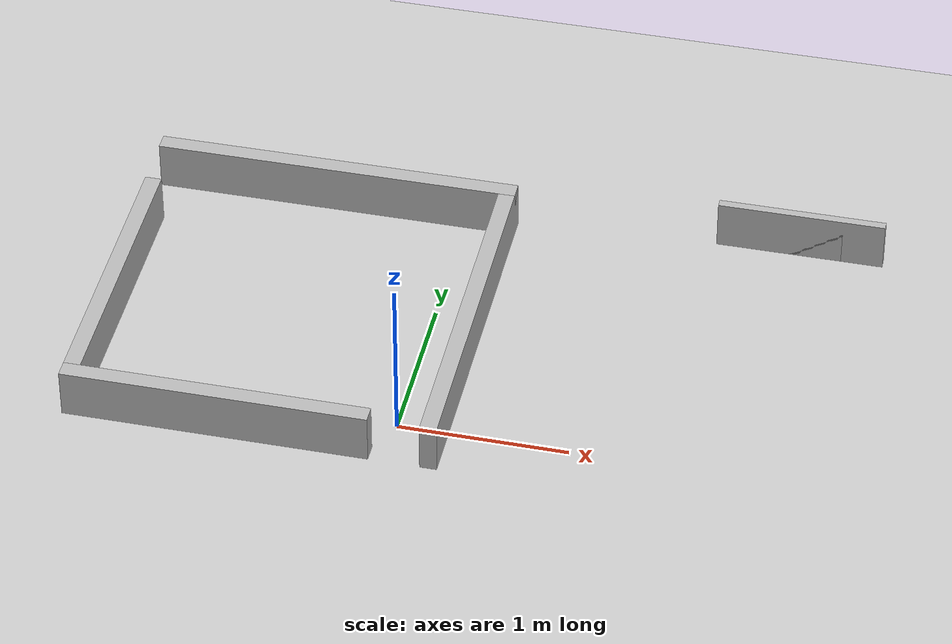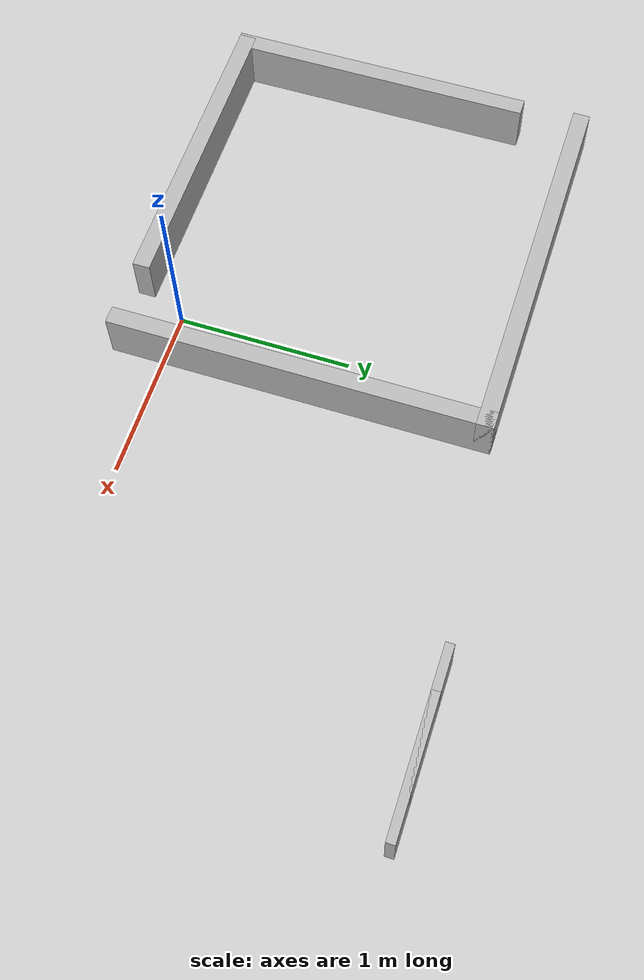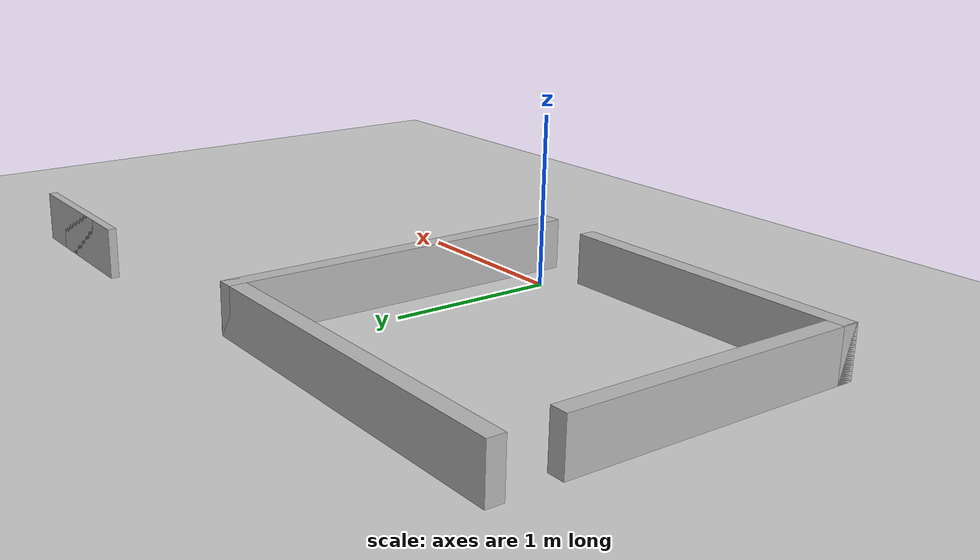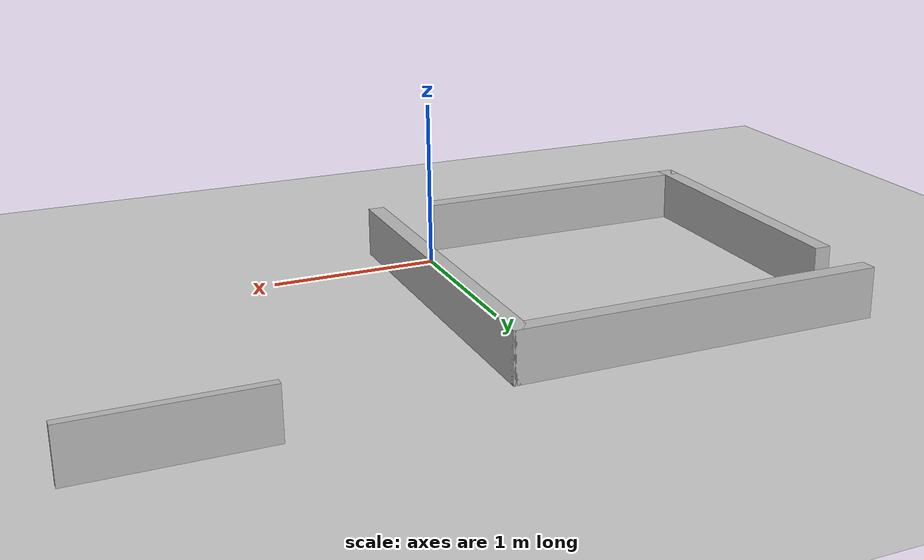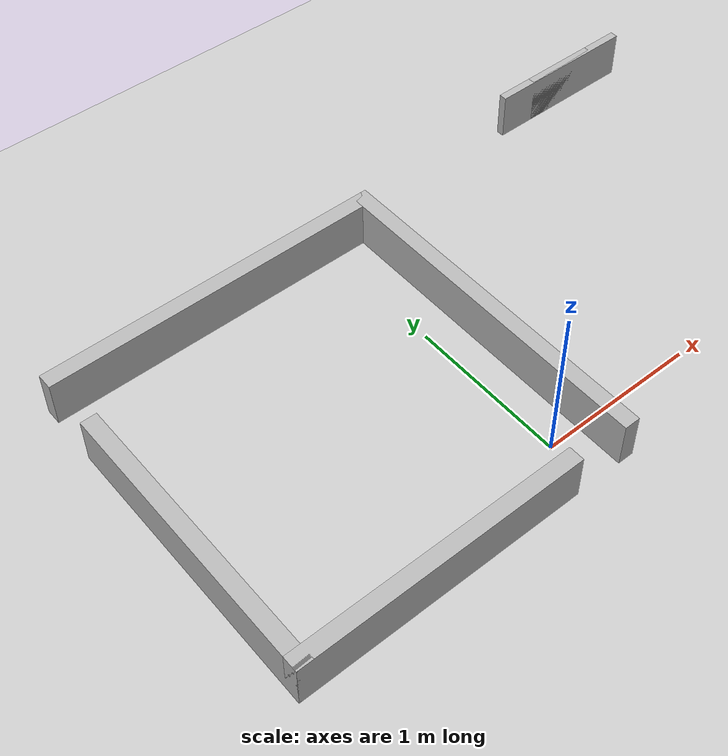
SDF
<?xml version="1.0" ?>
<sdf version="1.5">
  <world name="default">
    <include>
      <uri>model://sun</uri>
    </include>
    <include>
      <uri>model://ground_plane</uri>
    </include>

    <model name="wall_1">
      <static>true</static>
      <pose>-0.8 0.8 0.15 0 0 0</pose>
      <link name="wall_1">
        <pose>1.05 0 0 0 0 0</pose>
        <visual name="wall_1_visual">
          <geometry>
            <box>
              <size>0.1 2.2 0.3</size>
            </box>
          </geometry>
        </visual>
        <collision name="wall_1_collision">
          <geometry>
            <box>
              <size>0.1 2.2 0.3</size>
            </box>
          </geometry>
        </collision>
      </link>

      <link name="wall_2">
        <pose>-1.05 -0.2 0 0 0 0</pose>
        <visual name="wall_2_visual">
          <geometry>
            <box>
              <size>0.1 1.8 0.3</size>
            </box>
          </geometry>
        </visual>
        <collision name="wall_2_collision">
          <geometry>
            <box>
              <size>0.1 1.8 0.3</size>
            </box>
          </geometry>
        </collision>
      </link>

      <link name="wall_3">
        <pose>0 1.05 0 0 0 0</pose>
        <visual name="wall_3_visual">
          <geometry>
            <box>
              <size>2.2 0.1 0.3</size>
            </box>
          </geometry>
        </visual>
        <collision name="wall_3_collision">
          <geometry>
            <box>
              <size>2.2 0.1 0.3</size>
            </box>
          </geometry>
        </collision>
      </link>

      <link name="wall_4">
        <pose>-0.2 -1.05 0 0 0 0</pose>
        <visual name="wall_4_visual">
          <geometry>
            <box>
              <size>1.8 0.1 0.3</size>
            </box>
          </geometry>
        </visual>
        <collision name="wall_4_collision">
          <geometry>
            <box>
              <size>1.8 0.1 0.3</size>
            </box>
          </geometry>
        </collision>
      </link>
    </model>

    <model name="block_1">
      <pose>2 2 0.15 0 0 0</pose>
      <static>true</static>
      <link name="block_1">
        <visual name="block_1_visual">
          <geometry>
            <box>
              <size>1 0.05 0.3</size>
            </box>
          </geometry>
        </visual>
        <collision name="block_1_collision">
          <geometry>
            <box>
              <size>1 0.05 0.3</size>
            </box>
          </geometry>
        </collision>
      </link>
    </model>

    <model name="block_2">
      <pose>2 2 0.15 0 0 0</pose>
      <static>true</static>
      <link name="block_2">
        <visual name="block_2_visual">
          <geometry>
            <box>
              <size>1 0.05 0.3</size>
            </box>
          </geometry>
        </visual>
        <collision name="block_2_collision">
          <geometry>
            <box>
              <size>1 0.05 0.3</size>
            </box>
          </geometry>
        </collision>
      </link>
    </model>

    <model name="block_3">
      <pose>2 2 0.15 0 0 0</pose>
      <static>true</static>
      <link name="block_3">
        <visual name="block_3_visual">
          <geometry>
            <box>
              <size>1 0.05 0.3</size>
            </box>
          </geometry>
        </visual>
        <collision name="block_3_collision">
          <geometry>
            <box>
              <size>1 0.05 0.3</size>
            </box>
          </geometry>
        </collision>
      </link>
    </model>

    <model name="block_4">
      <pose>2 2 0.15 0 0 0</pose>
      <static>true</static>
      <link name="block_4">
        <visual name="block_4_visual">
          <geometry>
            <box>
              <size>1 0.05 0.3</size>
            </box>
          </geometry>
        </visual>
        <collision name="block_4_collision">
          <geometry>
            <box>
              <size>1 0.05 0.3</size>
            </box>
          </geometry>
        </collision>
      </link>
    </model>

    <model name="block_5">
      <pose>2 2 0.15 0 0 0</pose>
      <static>true</static>
      <link name="block_5">
        <visual name="block_5_visual">
          <geometry>
            <box>
              <size>0.5 0.05 0.3</size>
            </box>
          </geometry>
        </visual>
        <collision name="block_5_collision">
          <geometry>
            <box>
              <size>0.5 0.05 0.3</size>
            </box>
          </geometry>
        </collision>
      </link>
    </model>

    <model name="block_6">
      <pose>2 2 0.15 0 0 0</pose>
      <static>true</static>
      <link name="block_6">
        <visual name="block_6_visual">
          <geometry>
            <box>
              <size>0.5 0.05 0.3</size>
            </box>
          </geometry>
        </visual>
        <collision name="block_6_collision">
          <geometry>
            <box>
              <size>0.5 0.05 0.3</size>
            </box>
          </geometry>
        </collision>
      </link>
    </model>

    <model name="block_8">
      <pose>2 2 0.15 0 0 0</pose>
      <static>true</static>
      <link name="block_8">
        <visual name="block_8_visual">
          <geometry>
            <box>
              <size>0.5 0.05 0.3</size>
            </box>
          </geometry>
        </visual>
        <collision name="block_8_collision">
          <geometry>
            <box>
              <size>0.5 0.05 0.3</size>
            </box>
          </geometry>
        </collision>
      </link>
    </model>
  </world>
</sdf>
